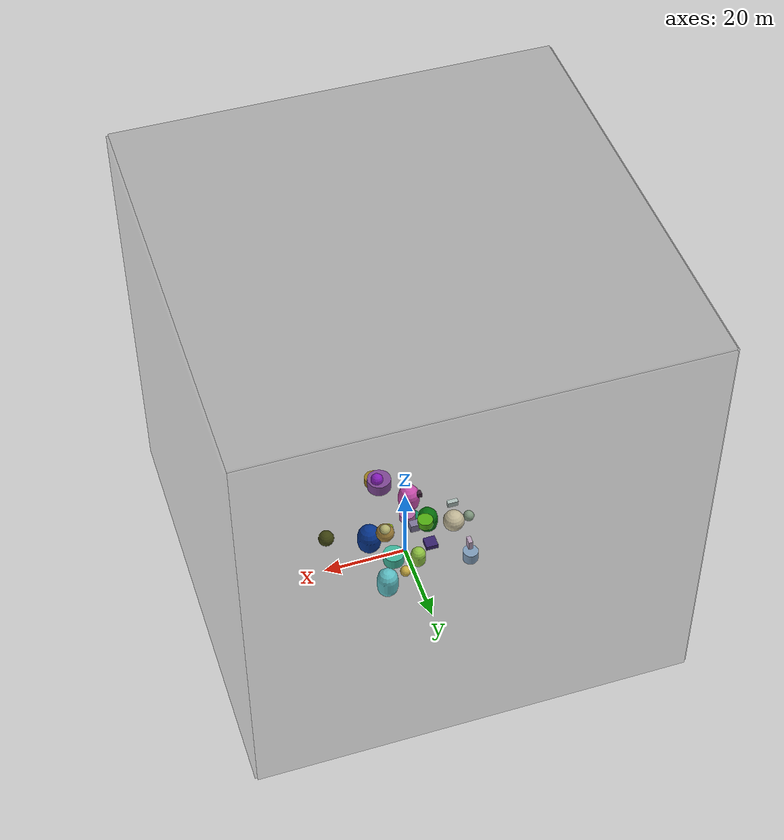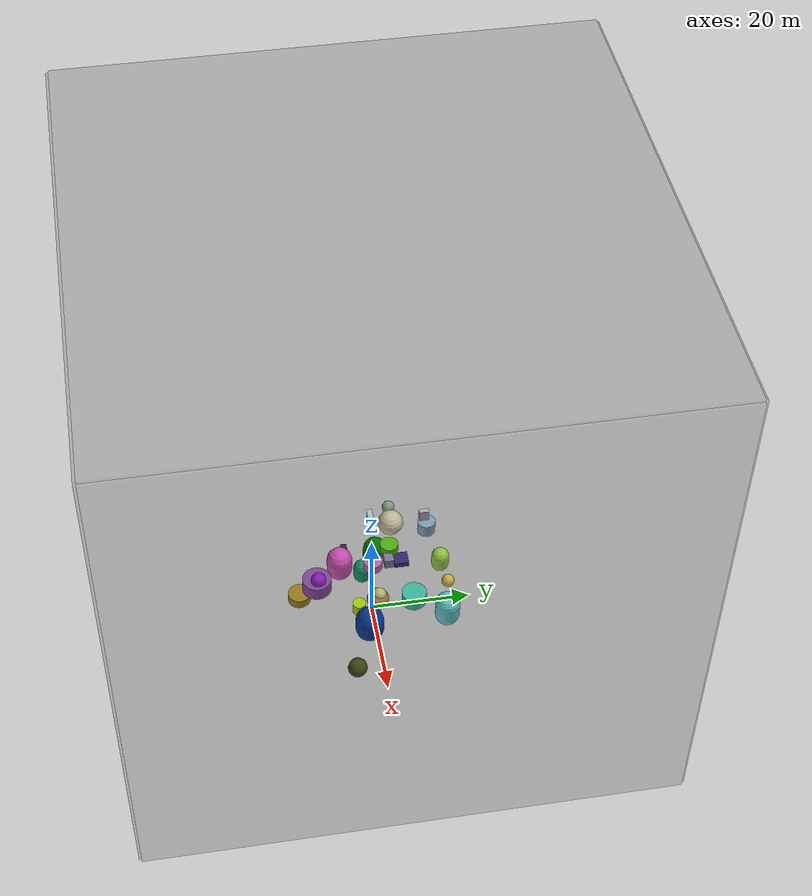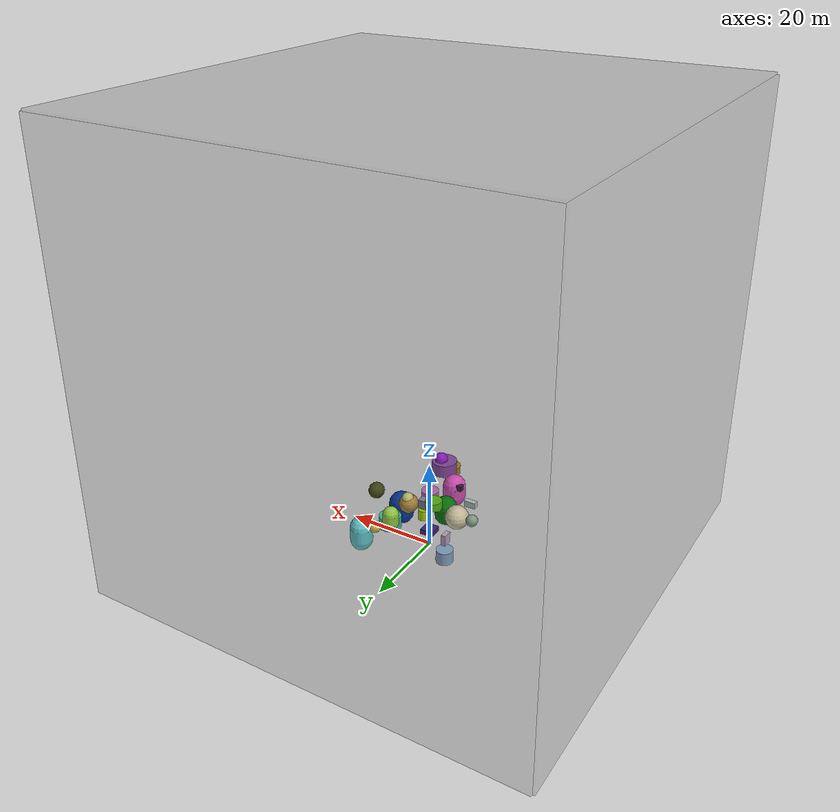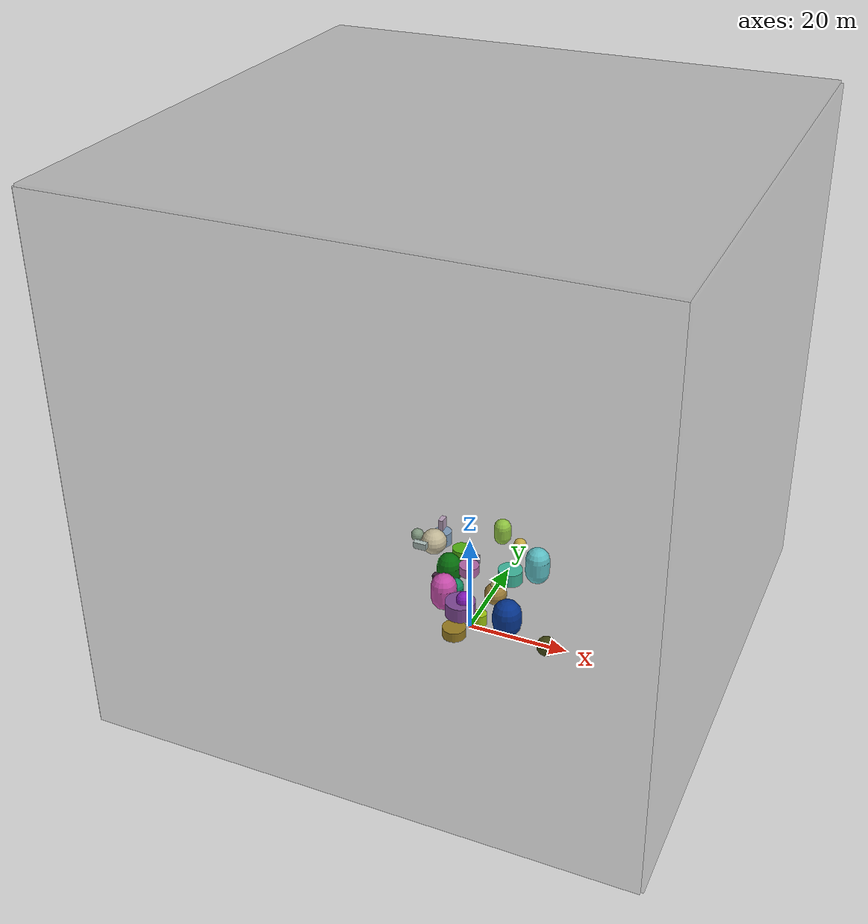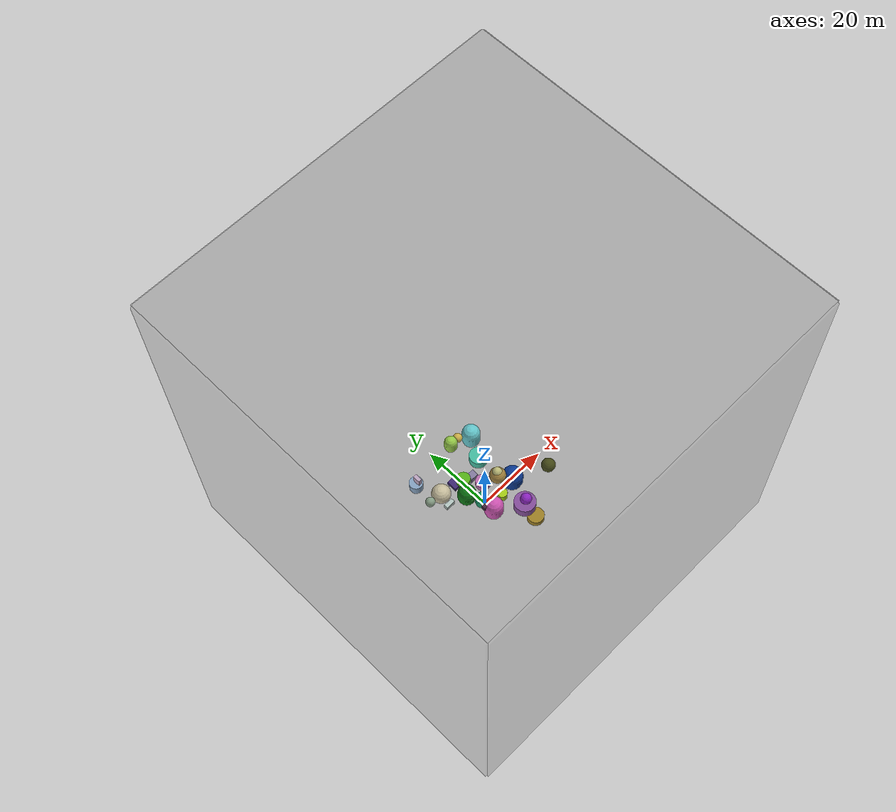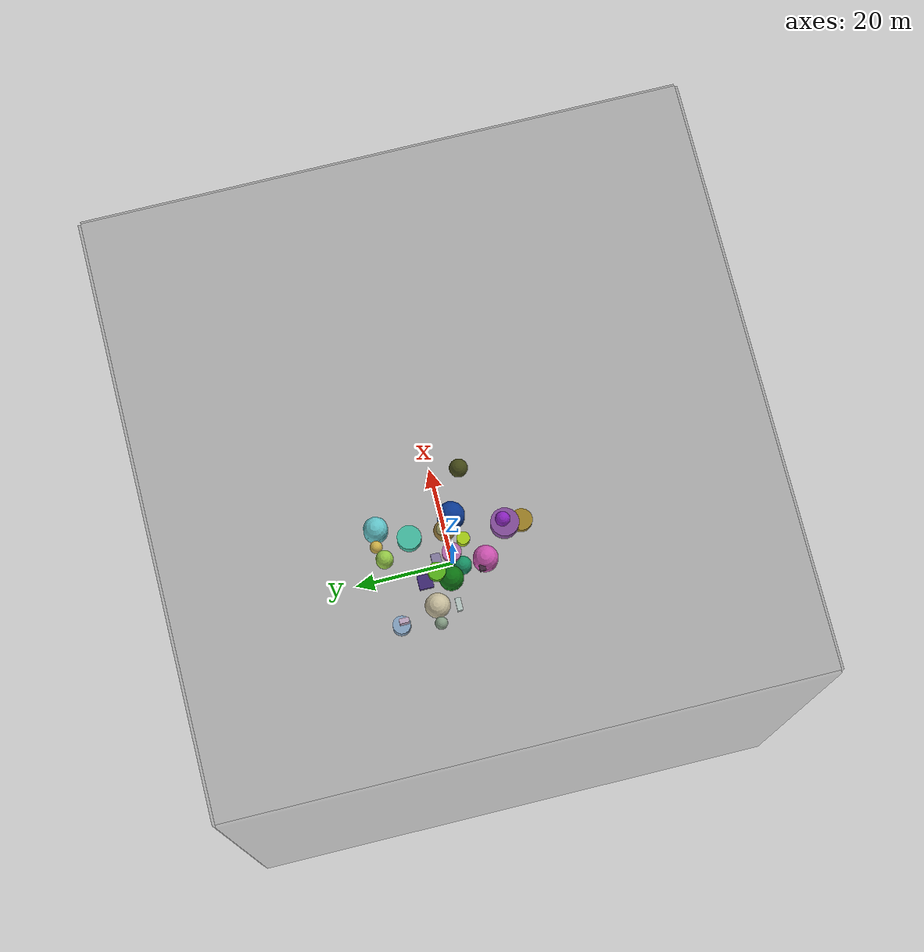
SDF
<sdf version='1.11'>
  <world name='world_0'>
    <gravity>0 0 -9.8066499999999994</gravity>
    <magnetic_field>5.5644999999999998e-06 2.2875799999999999e-05 -4.2388400000000002e-05</magnetic_field>
    <wind>
      <linear_velocity>8 2 10</linear_velocity>
    </wind>
    <physics default='false' type='ode'>
      <max_step_size>0.001</max_step_size>
      <real_time_factor>1</real_time_factor>
      <max_contacts>20</max_contacts>
    </physics>
    <model name='model_0'>
      <static>false</static>
      <self_collide>true</self_collide>
      <allow_auto_disable>true</allow_auto_disable>
      <enable_wind>true</enable_wind>
      <pose>-5.8562967054705739 5.292022592746676 4.3471294084064125 0 0 0</pose>
      <link name='link_0'>
        <pose>7.1224417815877104 8.154955835802177 9.7172102735100978 0 0 0</pose>
        <inertial>
          <pose>0 0 0 0 0 0</pose>
          <mass>1</mass>
          <inertia>
            <ixx>1</ixx>
            <ixy>0</ixy>
            <ixz>0</ixz>
            <iyy>1</iyy>
            <iyz>0</iyz>
            <izz>1</izz>
          </inertia>
        </inertial>
        <enable_wind>false</enable_wind>
        <collision name='collision_0'>
          <pose>0 0 0 0 0 0</pose>
          <geometry>
            <capsule>
              <radius>1.7191710811362637</radius>
              <length>1.9647214509957649</length>
            </capsule>
          </geometry>
          <surface>
            <contact>
              <collide_bitmask>255</collide_bitmask>
            </contact>
            <friction>
              <ode>
                <mu>1</mu>
                <mu2>1</mu2>
                <slip1>0</slip1>
                <slip2>0</slip2>
                <fdir1>0 0 0</fdir1>
              </ode>
            </friction>
          </surface>
        </collision>
        <visual name='visual_0'>
          <pose>0 0 0 0 0 0</pose>
          <geometry>
            <capsule>
              <radius>1.7191710811362637</radius>
              <length>1.9647214509957649</length>
            </capsule>
          </geometry>
          <cast_shadows>true</cast_shadows>
          <laser_retro>0</laser_retro>
          <transparency>0</transparency>
          <visibility_flags>4294967295</visibility_flags>
          <material>
            <ambient>0.684615672 0.938474774 0.30242455 1</ambient>
            <diffuse>0.684615672 0.938474774 0.30242455 1</diffuse>
            <specular>0 0 0 1</specular>
            <emissive>0 0 0 1</emissive>
            <render_order>0</render_order>
            <lighting>true</lighting>
            <double_sided>false</double_sided>
            <shader type='pixel'/>
          </material>
        </visual>
      </link>
      <link name='link_1'>
        <pose>-4.1815415692174724 0.21586167555117619 9.381170673889752 0 0 0</pose>
        <inertial>
          <pose>0 0 0 0 0 0</pose>
          <mass>1</mass>
          <inertia>
            <ixx>1</ixx>
            <ixy>0</ixy>
            <ixz>0</ixz>
            <iyy>1</iyy>
            <iyz>0</iyz>
            <izz>1</izz>
          </inertia>
        </inertial>
        <enable_wind>false</enable_wind>
        <collision name='collision_1'>
          <pose>0 0 0 0 0 0</pose>
          <geometry>
            <sphere>
              <radius>2.5320652994123889</radius>
            </sphere>
          </geometry>
          <surface>
            <contact>
              <collide_bitmask>255</collide_bitmask>
            </contact>
            <friction>
              <ode>
                <mu>1</mu>
                <mu2>1</mu2>
                <slip1>0</slip1>
                <slip2>0</slip2>
                <fdir1>0 0 0</fdir1>
              </ode>
            </friction>
          </surface>
        </collision>
        <visual name='visual_1'>
          <pose>0 0 0 0 0 0</pose>
          <geometry>
            <sphere>
              <radius>2.5320652994123889</radius>
            </sphere>
          </geometry>
          <cast_shadows>true</cast_shadows>
          <laser_retro>0</laser_retro>
          <transparency>0</transparency>
          <visibility_flags>4294967295</visibility_flags>
          <material>
            <ambient>0.937060773 0.886763275 0.728754282 1</ambient>
            <diffuse>0.937060773 0.886763275 0.728754282 1</diffuse>
            <specular>0 0 0 1</specular>
            <emissive>0 0 0 1</emissive>
            <render_order>0</render_order>
            <lighting>true</lighting>
            <double_sided>false</double_sided>
            <shader type='pixel'/>
          </material>
        </visual>
      </link>
      <link name='link_2'>
        <pose>-5.5881973507365839 7.2727985034648448 8.8428962565730025 0 0 0</pose>
        <inertial>
          <pose>0 0 0 0 0 0</pose>
          <mass>1</mass>
          <inertia>
            <ixx>1</ixx>
            <ixy>0</ixy>
            <ixz>0</ixz>
            <iyy>1</iyy>
            <iyz>0</iyz>
            <izz>1</izz>
          </inertia>
        </inertial>
        <enable_wind>false</enable_wind>
        <collision name='collision_2'>
          <pose>0 0 0 0 0 0</pose>
          <geometry>
            <box>
              <size>1.00797735520722 1.9620247322256035 2.3943640683259142</size>
            </box>
          </geometry>
          <surface>
            <contact>
              <collide_bitmask>255</collide_bitmask>
            </contact>
            <friction>
              <ode>
                <mu>1</mu>
                <mu2>1</mu2>
                <slip1>0</slip1>
                <slip2>0</slip2>
                <fdir1>0 0 0</fdir1>
              </ode>
            </friction>
          </surface>
        </collision>
        <visual name='visual_2'>
          <pose>0 0 0 0 0 0</pose>
          <geometry>
            <box>
              <size>1.00797735520722 1.9620247322256035 2.3943640683259142</size>
            </box>
          </geometry>
          <cast_shadows>true</cast_shadows>
          <laser_retro>0</laser_retro>
          <transparency>0</transparency>
          <visibility_flags>4294967295</visibility_flags>
          <material>
            <ambient>0.87322402 0.759853244 0.889345109 1</ambient>
            <diffuse>0.87322402 0.759853244 0.889345109 1</diffuse>
            <specular>0 0 0 1</specular>
            <emissive>0 0 0 1</emissive>
            <render_order>0</render_order>
            <lighting>true</lighting>
            <double_sided>false</double_sided>
            <shader type='pixel'/>
          </material>
        </visual>
      </link>
      <link name='link_3'>
        <pose>1.8243479950754455 1.2841866620108195 4.5973993271504359 0 0 0</pose>
        <inertial>
          <pose>0 0 0 0 0 0</pose>
          <mass>1</mass>
          <inertia>
            <ixx>1</ixx>
            <ixy>0</ixy>
            <ixz>0</ixz>
            <iyy>1</iyy>
            <iyz>0</iyz>
            <izz>1</izz>
          </inertia>
        </inertial>
        <enable_wind>false</enable_wind>
        <collision name='collision_3'>
          <pose>0 0 0 0 0 0</pose>
          <geometry>
            <box>
              <size>2.8599349705737289 2.9120623491236062 1.1342738496489437</size>
            </box>
          </geometry>
          <surface>
            <contact>
              <collide_bitmask>255</collide_bitmask>
            </contact>
            <friction>
              <ode>
                <mu>1</mu>
                <mu2>1</mu2>
                <slip1>0</slip1>
                <slip2>0</slip2>
                <fdir1>0 0 0</fdir1>
              </ode>
            </friction>
          </surface>
        </collision>
        <visual name='visual_3'>
          <pose>0 0 0 0 0 0</pose>
          <geometry>
            <box>
              <size>2.8599349705737289 2.9120623491236062 1.1342738496489437</size>
            </box>
          </geometry>
          <cast_shadows>true</cast_shadows>
          <laser_retro>0</laser_retro>
          <transparency>0</transparency>
          <visibility_flags>4294967295</visibility_flags>
          <material>
            <ambient>0.260255694 0.15791811 0.516666472 1</ambient>
            <diffuse>0.260255694 0.15791811 0.516666472 1</diffuse>
            <specular>0 0 0 1</specular>
            <emissive>0 0 0 1</emissive>
            <render_order>0</render_order>
            <lighting>true</lighting>
            <double_sided>false</double_sided>
            <shader type='pixel'/>
          </material>
        </visual>
      </link>
      <link name='link_4'>
        <pose>-7.8247906690463083 0.34545215775601257 9.8876968806735146 0 0 0</pose>
        <inertial>
          <pose>0 0 0 0 0 0</pose>
          <mass>1</mass>
          <inertia>
            <ixx>1</ixx>
            <ixy>0</ixy>
            <ixz>0</ixz>
            <iyy>1</iyy>
            <iyz>0</iyz>
            <izz>1</izz>
          </inertia>
        </inertial>
        <enable_wind>false</enable_wind>
        <collision name='collision_4'>
          <pose>0 0 0 0 0 0</pose>
          <geometry>
            <sphere>
              <radius>1.2736164415648408</radius>
            </sphere>
          </geometry>
          <surface>
            <contact>
              <collide_bitmask>255</collide_bitmask>
            </contact>
            <friction>
              <ode>
                <mu>1</mu>
                <mu2>1</mu2>
                <slip1>0</slip1>
                <slip2>0</slip2>
                <fdir1>0 0 0</fdir1>
              </ode>
            </friction>
          </surface>
        </collision>
        <visual name='visual_4'>
          <pose>0 0 0 0 0 0</pose>
          <geometry>
            <sphere>
              <radius>1.2736164415648408</radius>
            </sphere>
          </geometry>
          <cast_shadows>true</cast_shadows>
          <laser_retro>0</laser_retro>
          <transparency>0</transparency>
          <visibility_flags>4294967295</visibility_flags>
          <material>
            <ambient>0.608035505 0.721620917 0.602896094 1</ambient>
            <diffuse>0.608035505 0.721620917 0.602896094 1</diffuse>
            <specular>0 0 0 1</specular>
            <emissive>0 0 0 1</emissive>
            <render_order>0</render_order>
            <lighting>true</lighting>
            <double_sided>false</double_sided>
            <shader type='pixel'/>
          </material>
        </visual>
      </link>
      <plugin name='gz::sim::systems::PythonSystemLoader' filename='gz-sim-python-system-loader-system'>
        <module_name>driver</module_name>
        <force>100000</force>
      </plugin>
    </model>
    <model name='model_1'>
      <static>true</static>
      <self_collide>false</self_collide>
      <allow_auto_disable>true</allow_auto_disable>
      <enable_wind>true</enable_wind>
      <pose>-1.8862450775439594 -5.3847762411111777 6.0206876133095664 0 0 0</pose>
      <link name='link_5'>
        <pose>-2.97969666029325 0.56546840969576806 7.5127174568264312 0 0 0</pose>
        <inertial>
          <pose>0 0 0 0 0 0</pose>
          <mass>1</mass>
          <inertia>
            <ixx>1</ixx>
            <ixy>0</ixy>
            <ixz>0</ixz>
            <iyy>1</iyy>
            <iyz>0</iyz>
            <izz>1</izz>
          </inertia>
        </inertial>
        <enable_wind>false</enable_wind>
        <collision name='collision_5'>
          <pose>0 0 0 0 0 0</pose>
          <geometry>
            <box>
              <size>1.2479056680528784 1.2256149158481857 1.2719206645956487</size>
            </box>
          </geometry>
          <surface>
            <contact>
              <collide_bitmask>255</collide_bitmask>
            </contact>
            <friction>
              <ode>
                <mu>1</mu>
                <mu2>1</mu2>
                <slip1>0</slip1>
                <slip2>0</slip2>
                <fdir1>0 0 0</fdir1>
              </ode>
            </friction>
          </surface>
        </collision>
        <visual name='visual_5'>
          <pose>0 0 0 0 0 0</pose>
          <geometry>
            <box>
              <size>1.2479056680528784 1.2256149158481857 1.2719206645956487</size>
            </box>
          </geometry>
          <cast_shadows>true</cast_shadows>
          <laser_retro>0</laser_retro>
          <transparency>0</transparency>
          <visibility_flags>4294967295</visibility_flags>
          <material>
            <ambient>0.271330744 0.146540076 0.248400375 1</ambient>
            <diffuse>0.271330744 0.146540076 0.248400375 1</diffuse>
            <specular>0 0 0 1</specular>
            <emissive>0 0 0 1</emissive>
            <render_order>0</render_order>
            <lighting>true</lighting>
            <double_sided>false</double_sided>
            <shader type='pixel'/>
          </material>
        </visual>
      </link>
      <link name='link_6'>
        <pose>-3.082569859743165 6.8583092051319845 5.3150976872215336 0 0 0</pose>
        <inertial>
          <pose>0 0 0 0 0 0</pose>
          <mass>1</mass>
          <inertia>
            <ixx>1</ixx>
            <ixy>0</ixy>
            <ixz>0</ixz>
            <iyy>1</iyy>
            <iyz>0</iyz>
            <izz>1</izz>
          </inertia>
        </inertial>
        <enable_wind>false</enable_wind>
        <collision name='collision_6'>
          <pose>0 0 0 0 0 0</pose>
          <geometry>
            <capsule>
              <radius>2.4046990567467708</radius>
              <length>1.7624456142561238</length>
            </capsule>
          </geometry>
          <surface>
            <contact>
              <collide_bitmask>255</collide_bitmask>
            </contact>
            <friction>
              <ode>
                <mu>1</mu>
                <mu2>1</mu2>
                <slip1>0</slip1>
                <slip2>0</slip2>
                <fdir1>0 0 0</fdir1>
              </ode>
            </friction>
          </surface>
        </collision>
        <visual name='visual_6'>
          <pose>0 0 0 0 0 0</pose>
          <geometry>
            <capsule>
              <radius>2.4046990567467708</radius>
              <length>1.7624456142561238</length>
            </capsule>
          </geometry>
          <cast_shadows>true</cast_shadows>
          <laser_retro>0</laser_retro>
          <transparency>0</transparency>
          <visibility_flags>4294967295</visibility_flags>
          <material>
            <ambient>0.0184727386 0.526912093 0.0491232313 1</ambient>
            <diffuse>0.0184727386 0.526912093 0.0491232313 1</diffuse>
            <specular>0 0 0 1</specular>
            <emissive>0 0 0 1</emissive>
            <render_order>0</render_order>
            <lighting>true</lighting>
            <double_sided>false</double_sided>
            <shader type='pixel'/>
          </material>
        </visual>
      </link>
      <link name='link_7'>
        <pose>7.0177555607983031 5.8299309131769981 3.0202133786108911 0 0 0</pose>
        <inertial>
          <pose>0 0 0 0 0 0</pose>
          <mass>1</mass>
          <inertia>
            <ixx>1</ixx>
            <ixy>0</ixy>
            <ixz>0</ixz>
            <iyy>1</iyy>
            <iyz>0</iyz>
            <izz>1</izz>
          </inertia>
        </inertial>
        <enable_wind>false</enable_wind>
        <collision name='collision_7'>
          <pose>0 0 0 0 0 0</pose>
          <geometry>
            <sphere>
              <radius>2.1853484696182437</radius>
            </sphere>
          </geometry>
          <surface>
            <contact>
              <collide_bitmask>255</collide_bitmask>
            </contact>
            <friction>
              <ode>
                <mu>1</mu>
                <mu2>1</mu2>
                <slip1>0</slip1>
                <slip2>0</slip2>
                <fdir1>0 0 0</fdir1>
              </ode>
            </friction>
          </surface>
        </collision>
        <visual name='visual_7'>
          <pose>0 0 0 0 0 0</pose>
          <geometry>
            <sphere>
              <radius>2.1853484696182437</radius>
            </sphere>
          </geometry>
          <cast_shadows>true</cast_shadows>
          <laser_retro>0</laser_retro>
          <transparency>0</transparency>
          <visibility_flags>4294967295</visibility_flags>
          <material>
            <ambient>0.759367228 0.603504539 0.264703333 1</ambient>
            <diffuse>0.759367228 0.603504539 0.264703333 1</diffuse>
            <specular>0 0 0 1</specular>
            <emissive>0 0 0 1</emissive>
            <render_order>0</render_order>
            <lighting>true</lighting>
            <double_sided>false</double_sided>
            <shader type='pixel'/>
          </material>
        </visual>
      </link>
      <link name='link_8'>
        <pose>5.0854234050449048 -9.4121354568521891 4.5292534215454729 0 0 0</pose>
        <inertial>
          <pose>0 0 0 0 0 0</pose>
          <mass>1</mass>
          <inertia>
            <ixx>1</ixx>
            <ixy>0</ixy>
            <ixz>0</ixz>
            <iyy>1</iyy>
            <iyz>0</iyz>
            <izz>1</izz>
          </inertia>
        </inertial>
        <enable_wind>false</enable_wind>
        <collision name='collision_8'>
          <pose>0 0 0 0 0 0</pose>
          <geometry>
            <cylinder>
              <radius>2.1948455406820009</radius>
              <length>1.9033515005008972</length>
            </cylinder>
          </geometry>
          <surface>
            <contact>
              <collide_bitmask>255</collide_bitmask>
            </contact>
            <friction>
              <ode>
                <mu>1</mu>
                <mu2>1</mu2>
                <slip1>0</slip1>
                <slip2>0</slip2>
                <fdir1>0 0 0</fdir1>
              </ode>
            </friction>
          </surface>
        </collision>
        <visual name='visual_8'>
          <pose>0 0 0 0 0 0</pose>
          <geometry>
            <cylinder>
              <radius>2.1948455406820009</radius>
              <length>1.9033515005008972</length>
            </cylinder>
          </geometry>
          <cast_shadows>true</cast_shadows>
          <laser_retro>0</laser_retro>
          <transparency>0</transparency>
          <visibility_flags>4294967295</visibility_flags>
          <material>
            <ambient>0.719311476 0.579470336 0.138637707 1</ambient>
            <diffuse>0.719311476 0.579470336 0.138637707 1</diffuse>
            <specular>0 0 0 1</specular>
            <emissive>0 0 0 1</emissive>
            <render_order>0</render_order>
            <lighting>true</lighting>
            <double_sided>false</double_sided>
            <shader type='pixel'/>
          </material>
        </visual>
      </link>
      <link name='link_9'>
        <pose>-0.92838971571557849 -0.58518895506809265 5.5844607668886495 0 0 0</pose>
        <inertial>
          <pose>0 0 0 0 0 0</pose>
          <mass>1</mass>
          <inertia>
            <ixx>1</ixx>
            <ixy>0</ixy>
            <ixz>0</ixz>
            <iyy>1</iyy>
            <iyz>0</iyz>
            <izz>1</izz>
          </inertia>
        </inertial>
        <enable_wind>false</enable_wind>
        <collision name='collision_9'>
          <pose>0 0 0 0 0 0</pose>
          <geometry>
            <capsule>
              <radius>2.5068992578958147</radius>
              <length>2.3922379451980067</length>
            </capsule>
          </geometry>
          <surface>
            <contact>
              <collide_bitmask>255</collide_bitmask>
            </contact>
            <friction>
              <ode>
                <mu>1</mu>
                <mu2>1</mu2>
                <slip1>0</slip1>
                <slip2>0</slip2>
                <fdir1>0 0 0</fdir1>
              </ode>
            </friction>
          </surface>
        </collision>
        <visual name='visual_9'>
          <pose>0 0 0 0 0 0</pose>
          <geometry>
            <capsule>
              <radius>2.5068992578958147</radius>
              <length>2.3922379451980067</length>
            </capsule>
          </geometry>
          <cast_shadows>true</cast_shadows>
          <laser_retro>0</laser_retro>
          <transparency>0</transparency>
          <visibility_flags>4294967295</visibility_flags>
          <material>
            <ambient>0.960728645 0.362132847 0.822767794 1</ambient>
            <diffuse>0.960728645 0.362132847 0.822767794 1</diffuse>
            <specular>0 0 0 1</specular>
            <emissive>0 0 0 1</emissive>
            <render_order>0</render_order>
            <lighting>true</lighting>
            <double_sided>false</double_sided>
            <shader type='pixel'/>
          </material>
        </visual>
      </link>
      <plugin name='gz::sim::systems::PythonSystemLoader' filename='gz-sim-python-system-loader-system'>
        <module_name>driver</module_name>
        <force>100000</force>
      </plugin>
    </model>
    <model name='model_2'>
      <static>true</static>
      <self_collide>true</self_collide>
      <allow_auto_disable>true</allow_auto_disable>
      <enable_wind>false</enable_wind>
      <pose>9.8522898092701681 7.0065126335812487 1.4800835018157998 0 0 0</pose>
      <link name='link_10'>
        <pose>-1.4557399889234794 -8.6855555438267835 4.1838762590652498 0 0 0</pose>
        <inertial>
          <pose>0 0 0 0 0 0</pose>
          <mass>1</mass>
          <inertia>
            <ixx>1</ixx>
            <ixy>0</ixy>
            <ixz>0</ixz>
            <iyy>1</iyy>
            <iyz>0</iyz>
            <izz>1</izz>
          </inertia>
        </inertial>
        <enable_wind>false</enable_wind>
        <collision name='collision_10'>
          <pose>0 0 0 0 0 0</pose>
          <geometry>
            <capsule>
              <radius>2.8173041198936408</radius>
              <length>2.0749010729578439</length>
            </capsule>
          </geometry>
          <surface>
            <contact>
              <collide_bitmask>255</collide_bitmask>
            </contact>
            <friction>
              <ode>
                <mu>1</mu>
                <mu2>1</mu2>
                <slip1>0</slip1>
                <slip2>0</slip2>
                <fdir1>0 0 0</fdir1>
              </ode>
            </friction>
          </surface>
        </collision>
        <visual name='visual_10'>
          <pose>0 0 0 0 0 0</pose>
          <geometry>
            <capsule>
              <radius>2.8173041198936408</radius>
              <length>2.0749010729578439</length>
            </capsule>
          </geometry>
          <cast_shadows>true</cast_shadows>
          <laser_retro>0</laser_retro>
          <transparency>0</transparency>
          <visibility_flags>4294967295</visibility_flags>
          <material>
            <ambient>0.0121176876 0.241746217 0.679670095 1</ambient>
            <diffuse>0.0121176876 0.241746217 0.679670095 1</diffuse>
            <specular>0 0 0 1</specular>
            <emissive>0 0 0 1</emissive>
            <render_order>0</render_order>
            <lighting>true</lighting>
            <double_sided>false</double_sided>
            <shader type='pixel'/>
          </material>
        </visual>
      </link>
      <link name='link_11'>
        <pose>-4.6452457631731159 -6.2845845161907876 8.9449698896279841 0 0 0</pose>
        <inertial>
          <pose>0 0 0 0 0 0</pose>
          <mass>1</mass>
          <inertia>
            <ixx>1</ixx>
            <ixy>0</ixy>
            <ixz>0</ixz>
            <iyy>1</iyy>
            <iyz>0</iyz>
            <izz>1</izz>
          </inertia>
        </inertial>
        <enable_wind>false</enable_wind>
        <collision name='collision_11'>
          <pose>0 0 0 0 0 0</pose>
          <geometry>
            <sphere>
              <radius>1.3522830965798498</radius>
            </sphere>
          </geometry>
          <surface>
            <contact>
              <collide_bitmask>255</collide_bitmask>
            </contact>
            <friction>
              <ode>
                <mu>1</mu>
                <mu2>1</mu2>
                <slip1>0</slip1>
                <slip2>0</slip2>
                <fdir1>0 0 0</fdir1>
              </ode>
            </friction>
          </surface>
        </collision>
        <visual name='visual_11'>
          <pose>0 0 0 0 0 0</pose>
          <geometry>
            <sphere>
              <radius>1.3522830965798498</radius>
            </sphere>
          </geometry>
          <cast_shadows>true</cast_shadows>
          <laser_retro>0</laser_retro>
          <transparency>0</transparency>
          <visibility_flags>4294967295</visibility_flags>
          <material>
            <ambient>0.869817376 0.857367694 0.535221696 1</ambient>
            <diffuse>0.869817376 0.857367694 0.535221696 1</diffuse>
            <specular>0 0 0 1</specular>
            <emissive>0 0 0 1</emissive>
            <render_order>0</render_order>
            <lighting>true</lighting>
            <double_sided>false</double_sided>
            <shader type='pixel'/>
          </material>
        </visual>
      </link>
      <link name='link_12'>
        <pose>-1.1370324133317062 6.6696976736530686 6.3431706830996868 0 0 0</pose>
        <inertial>
          <pose>0 0 0 0 0 0</pose>
          <mass>1</mass>
          <inertia>
            <ixx>1</ixx>
            <ixy>0</ixy>
            <ixz>0</ixz>
            <iyy>1</iyy>
            <iyz>0</iyz>
            <izz>1</izz>
          </inertia>
        </inertial>
        <enable_wind>false</enable_wind>
        <collision name='collision_12'>
          <pose>0 0 0 0 0 0</pose>
          <geometry>
            <capsule>
              <radius>2.4423600075068839</radius>
              <length>2.920787827121639</length>
            </capsule>
          </geometry>
          <surface>
            <contact>
              <collide_bitmask>255</collide_bitmask>
            </contact>
            <friction>
              <ode>
                <mu>1</mu>
                <mu2>1</mu2>
                <slip1>0</slip1>
                <slip2>0</slip2>
                <fdir1>0 0 0</fdir1>
              </ode>
            </friction>
          </surface>
        </collision>
        <visual name='visual_12'>
          <pose>0 0 0 0 0 0</pose>
          <geometry>
            <capsule>
              <radius>2.4423600075068839</radius>
              <length>2.920787827121639</length>
            </capsule>
          </geometry>
          <cast_shadows>true</cast_shadows>
          <laser_retro>0</laser_retro>
          <transparency>0</transparency>
          <visibility_flags>4294967295</visibility_flags>
          <material>
            <ambient>0.44089523 0.922009468 0.949760139 1</ambient>
            <diffuse>0.44089523 0.922009468 0.949760139 1</diffuse>
            <specular>0 0 0 1</specular>
            <emissive>0 0 0 1</emissive>
            <render_order>0</render_order>
            <lighting>true</lighting>
            <double_sided>false</double_sided>
            <shader type='pixel'/>
          </material>
        </visual>
      </link>
      <link name='link_13'>
        <pose>-5.2090479992563772 7.438660319934403 9.8279250006705592 0 0 0</pose>
        <inertial>
          <pose>0 0 0 0 0 0</pose>
          <mass>1</mass>
          <inertia>
            <ixx>1</ixx>
            <ixy>0</ixy>
            <ixz>0</ixz>
            <iyy>1</iyy>
            <iyz>0</iyz>
            <izz>1</izz>
          </inertia>
        </inertial>
        <enable_wind>false</enable_wind>
        <collision name='collision_13'>
          <pose>0 0 0 0 0 0</pose>
          <geometry>
            <sphere>
              <radius>1.2632066711619558</radius>
            </sphere>
          </geometry>
          <surface>
            <contact>
              <collide_bitmask>255</collide_bitmask>
            </contact>
            <friction>
              <ode>
                <mu>1</mu>
                <mu2>1</mu2>
                <slip1>0</slip1>
                <slip2>0</slip2>
                <fdir1>0 0 0</fdir1>
              </ode>
            </friction>
          </surface>
        </collision>
        <visual name='visual_13'>
          <pose>0 0 0 0 0 0</pose>
          <geometry>
            <sphere>
              <radius>1.2632066711619558</radius>
            </sphere>
          </geometry>
          <cast_shadows>true</cast_shadows>
          <laser_retro>0</laser_retro>
          <transparency>0</transparency>
          <visibility_flags>4294967295</visibility_flags>
          <material>
            <ambient>0.964358091 0.819470227 0.306800723 1</ambient>
            <diffuse>0.964358091 0.819470227 0.306800723 1</diffuse>
            <specular>0 0 0 1</specular>
            <emissive>0 0 0 1</emissive>
            <render_order>0</render_order>
            <lighting>true</lighting>
            <double_sided>false</double_sided>
            <shader type='pixel'/>
          </material>
        </visual>
      </link>
      <link name='link_14'>
        <pose>-4.5295431563758903 0.60423063090716944 7.1490529501341538 0 0 0</pose>
        <inertial>
          <pose>0 0 0 0 0 0</pose>
          <mass>1</mass>
          <inertia>
            <ixx>1</ixx>
            <ixy>0</ixy>
            <ixz>0</ixz>
            <iyy>1</iyy>
            <iyz>0</iyz>
            <izz>1</izz>
          </inertia>
        </inertial>
        <enable_wind>false</enable_wind>
        <collision name='collision_14'>
          <pose>0 0 0 0 0 0</pose>
          <geometry>
            <cylinder>
              <radius>2.4432821692973548</radius>
              <length>2.6803364261640192</length>
            </cylinder>
          </geometry>
          <surface>
            <contact>
              <collide_bitmask>255</collide_bitmask>
            </contact>
            <friction>
              <ode>
                <mu>1</mu>
                <mu2>1</mu2>
                <slip1>0</slip1>
                <slip2>0</slip2>
                <fdir1>0 0 0</fdir1>
              </ode>
            </friction>
          </surface>
        </collision>
        <visual name='visual_14'>
          <pose>0 0 0 0 0 0</pose>
          <geometry>
            <cylinder>
              <radius>2.4432821692973548</radius>
              <length>2.6803364261640192</length>
            </cylinder>
          </geometry>
          <cast_shadows>true</cast_shadows>
          <laser_retro>0</laser_retro>
          <transparency>0</transparency>
          <visibility_flags>4294967295</visibility_flags>
          <material>
            <ambient>0.28724131 0.866822481 0.73763448 1</ambient>
            <diffuse>0.28724131 0.866822481 0.73763448 1</diffuse>
            <specular>0 0 0 1</specular>
            <emissive>0 0 0 1</emissive>
            <render_order>0</render_order>
            <lighting>true</lighting>
            <double_sided>false</double_sided>
            <shader type='pixel'/>
          </material>
        </visual>
      </link>
      <plugin name='gz::sim::systems::PythonSystemLoader' filename='gz-sim-python-system-loader-system'>
        <module_name>driver</module_name>
        <force>100000</force>
      </plugin>
    </model>
    <model name='model_3'>
      <static>false</static>
      <self_collide>true</self_collide>
      <allow_auto_disable>true</allow_auto_disable>
      <enable_wind>false</enable_wind>
      <pose>8.331063286184559 -3.1925665741468485 4.749577056456566 0 0 0</pose>
      <link name='link_15'>
        <pose>-4.8493567392482522 -7.7673019460628527 8.8723080549174185 0 0 0</pose>
        <inertial>
          <pose>0 0 0 0 0 0</pose>
          <mass>1</mass>
          <inertia>
            <ixx>1</ixx>
            <ixy>0</ixy>
            <ixz>0</ixz>
            <iyy>1</iyy>
            <iyz>0</iyz>
            <izz>1</izz>
          </inertia>
        </inertial>
        <enable_wind>false</enable_wind>
        <collision name='collision_15'>
          <pose>0 0 0 0 0 0</pose>
          <geometry>
            <capsule>
              <radius>1.4794716414133451</radius>
              <length>2.8893566815984428</length>
            </capsule>
          </geometry>
          <surface>
            <contact>
              <collide_bitmask>255</collide_bitmask>
            </contact>
            <friction>
              <ode>
                <mu>1</mu>
                <mu2>1</mu2>
                <slip1>0</slip1>
                <slip2>0</slip2>
                <fdir1>0 0 0</fdir1>
              </ode>
            </friction>
          </surface>
        </collision>
        <visual name='visual_15'>
          <pose>0 0 0 0 0 0</pose>
          <geometry>
            <capsule>
              <radius>1.4794716414133451</radius>
              <length>2.8893566815984428</length>
            </capsule>
          </geometry>
          <cast_shadows>true</cast_shadows>
          <laser_retro>0</laser_retro>
          <transparency>0</transparency>
          <visibility_flags>4294967295</visibility_flags>
          <material>
            <ambient>0.640705168 0.12995328 0.895779848 1</ambient>
            <diffuse>0.640705168 0.12995328 0.895779848 1</diffuse>
            <specular>0 0 0 1</specular>
            <emissive>0 0 0 1</emissive>
            <render_order>0</render_order>
            <lighting>true</lighting>
            <double_sided>false</double_sided>
            <shader type='pixel'/>
          </material>
        </visual>
      </link>
      <link name='link_16'>
        <pose>-5.4698699300786409 -8.0533825400820991 8.5276883640900252 0 0 0</pose>
        <inertial>
          <pose>0 0 0 0 0 0</pose>
          <mass>1</mass>
          <inertia>
            <ixx>1</ixx>
            <ixy>0</ixy>
            <ixz>0</ixz>
            <iyy>1</iyy>
            <iyz>0</iyz>
            <izz>1</izz>
          </inertia>
        </inertial>
        <enable_wind>false</enable_wind>
        <collision name='collision_16'>
          <pose>0 0 0 0 0 0</pose>
          <geometry>
            <cylinder>
              <radius>2.8425424554381804</radius>
              <length>2.8970865799507033</length>
            </cylinder>
          </geometry>
          <surface>
            <contact>
              <collide_bitmask>255</collide_bitmask>
            </contact>
            <friction>
              <ode>
                <mu>1</mu>
                <mu2>1</mu2>
                <slip1>0</slip1>
                <slip2>0</slip2>
                <fdir1>0 0 0</fdir1>
              </ode>
            </friction>
          </surface>
        </collision>
        <visual name='visual_16'>
          <pose>0 0 0 0 0 0</pose>
          <geometry>
            <cylinder>
              <radius>2.8425424554381804</radius>
              <length>2.8970865799507033</length>
            </cylinder>
          </geometry>
          <cast_shadows>true</cast_shadows>
          <laser_retro>0</laser_retro>
          <transparency>0</transparency>
          <visibility_flags>4294967295</visibility_flags>
          <material>
            <ambient>0.601542473 0.333219439 0.70867753 1</ambient>
            <diffuse>0.601542473 0.333219439 0.70867753 1</diffuse>
            <specular>0 0 0 1</specular>
            <emissive>0 0 0 1</emissive>
            <render_order>0</render_order>
            <lighting>true</lighting>
            <double_sided>false</double_sided>
            <shader type='pixel'/>
          </material>
        </visual>
      </link>
      <link name='link_17'>
        <pose>9.5237401467703613 -2.3984401867721461 0.076570179848385322 0 0 0</pose>
        <inertial>
          <pose>0 0 0 0 0 0</pose>
          <mass>1</mass>
          <inertia>
            <ixx>1</ixx>
            <ixy>0</ixy>
            <ixz>0</ixz>
            <iyy>1</iyy>
            <iyz>0</iyz>
            <izz>1</izz>
          </inertia>
        </inertial>
        <enable_wind>false</enable_wind>
        <collision name='collision_17'>
          <pose>0 0 0 0 0 0</pose>
          <geometry>
            <sphere>
              <radius>1.8960740422893341</radius>
            </sphere>
          </geometry>
          <surface>
            <contact>
              <collide_bitmask>255</collide_bitmask>
            </contact>
            <friction>
              <ode>
                <mu>1</mu>
                <mu2>1</mu2>
                <slip1>0</slip1>
                <slip2>0</slip2>
                <fdir1>0 0 0</fdir1>
              </ode>
            </friction>
          </surface>
        </collision>
        <visual name='visual_17'>
          <pose>0 0 0 0 0 0</pose>
          <geometry>
            <sphere>
              <radius>1.8960740422893341</radius>
            </sphere>
          </geometry>
          <cast_shadows>true</cast_shadows>
          <laser_retro>0</laser_retro>
          <transparency>0</transparency>
          <visibility_flags>4294967295</visibility_flags>
          <material>
            <ambient>0.291238308 0.313832432 0.0723239258 1</ambient>
            <diffuse>0.291238308 0.313832432 0.0723239258 1</diffuse>
            <specular>0 0 0 1</specular>
            <emissive>0 0 0 1</emissive>
            <render_order>0</render_order>
            <lighting>true</lighting>
            <double_sided>false</double_sided>
            <shader type='pixel'/>
          </material>
        </visual>
      </link>
      <link name='link_18'>
        <pose>-4.956456593037295 0.19691788333850369 0.27910755007632515 0 0 0</pose>
        <inertial>
          <pose>0 0 0 0 0 0</pose>
          <mass>1</mass>
          <inertia>
            <ixx>1</ixx>
            <ixy>0</ixy>
            <ixz>0</ixz>
            <iyy>1</iyy>
            <iyz>0</iyz>
            <izz>1</izz>
          </inertia>
        </inertial>
        <enable_wind>false</enable_wind>
        <collision name='collision_18'>
          <pose>0 0 0 0 0 0</pose>
          <geometry>
            <cylinder>
              <radius>1.3184456060163465</radius>
              <length>2.4367057756569466</length>
            </cylinder>
          </geometry>
          <surface>
            <contact>
              <collide_bitmask>255</collide_bitmask>
            </contact>
            <friction>
              <ode>
                <mu>1</mu>
                <mu2>1</mu2>
                <slip1>0</slip1>
                <slip2>0</slip2>
                <fdir1>0 0 0</fdir1>
              </ode>
            </friction>
          </surface>
        </collision>
        <visual name='visual_18'>
          <pose>0 0 0 0 0 0</pose>
          <geometry>
            <cylinder>
              <radius>1.3184456060163465</radius>
              <length>2.4367057756569466</length>
            </cylinder>
          </geometry>
          <cast_shadows>true</cast_shadows>
          <laser_retro>0</laser_retro>
          <transparency>0</transparency>
          <visibility_flags>4294967295</visibility_flags>
          <material>
            <ambient>0.765464008 0.957742274 0.0637245253 1</ambient>
            <diffuse>0.765464008 0.957742274 0.0637245253 1</diffuse>
            <specular>0 0 0 1</specular>
            <emissive>0 0 0 1</emissive>
            <render_order>0</render_order>
            <lighting>true</lighting>
            <double_sided>false</double_sided>
            <shader type='pixel'/>
          </material>
        </visual>
      </link>
      <link name='link_19'>
        <pose>-8.6855115750165055 3.5265902626993384 8.5560508705344613 0 0 0</pose>
        <inertial>
          <pose>0 0 0 0 0 0</pose>
          <mass>1</mass>
          <inertia>
            <ixx>1</ixx>
            <ixy>0</ixy>
            <ixz>0</ixz>
            <iyy>1</iyy>
            <iyz>0</iyz>
            <izz>1</izz>
          </inertia>
        </inertial>
        <enable_wind>false</enable_wind>
        <collision name='collision_19'>
          <pose>0 0 0 0 0 0</pose>
          <geometry>
            <cylinder>
              <radius>1.9225084068430398</radius>
              <length>1.8777590244641109</length>
            </cylinder>
          </geometry>
          <surface>
            <contact>
              <collide_bitmask>255</collide_bitmask>
            </contact>
            <friction>
              <ode>
                <mu>1</mu>
                <mu2>1</mu2>
                <slip1>0</slip1>
                <slip2>0</slip2>
                <fdir1>0 0 0</fdir1>
              </ode>
            </friction>
          </surface>
        </collision>
        <visual name='visual_19'>
          <pose>0 0 0 0 0 0</pose>
          <geometry>
            <cylinder>
              <radius>1.9225084068430398</radius>
              <length>1.8777590244641109</length>
            </cylinder>
          </geometry>
          <cast_shadows>true</cast_shadows>
          <laser_retro>0</laser_retro>
          <transparency>0</transparency>
          <visibility_flags>4294967295</visibility_flags>
          <material>
            <ambient>0.851373792 0.478047252 0.793483198 1</ambient>
            <diffuse>0.851373792 0.478047252 0.793483198 1</diffuse>
            <specular>0 0 0 1</specular>
            <emissive>0 0 0 1</emissive>
            <render_order>0</render_order>
            <lighting>true</lighting>
            <double_sided>false</double_sided>
            <shader type='pixel'/>
          </material>
        </visual>
      </link>
      <plugin name='gz::sim::systems::PythonSystemLoader' filename='gz-sim-python-system-loader-system'>
        <module_name>driver</module_name>
        <force>100000</force>
      </plugin>
    </model>
    <model name='model_4'>
      <static>false</static>
      <self_collide>false</self_collide>
      <allow_auto_disable>true</allow_auto_disable>
      <enable_wind>false</enable_wind>
      <pose>-6.1827759865122474 7.5005208720296075 5.153771709283693 0 0 0</pose>
      <link name='link_20'>
        <pose>3.6448180225036548 -8.9479573578970282 3.6486834135133837 0 0 0</pose>
        <inertial>
          <pose>0 0 0 0 0 0</pose>
          <mass>1</mass>
          <inertia>
            <ixx>1</ixx>
            <ixy>0</ixy>
            <ixz>0</ixz>
            <iyy>1</iyy>
            <iyz>0</iyz>
            <izz>1</izz>
          </inertia>
        </inertial>
        <enable_wind>false</enable_wind>
        <collision name='collision_20'>
          <pose>0 0 0 0 0 0</pose>
          <geometry>
            <capsule>
              <radius>1.7447630216732424</radius>
              <length>1.7677449904481539</length>
            </capsule>
          </geometry>
          <surface>
            <contact>
              <collide_bitmask>255</collide_bitmask>
            </contact>
            <friction>
              <ode>
                <mu>1</mu>
                <mu2>1</mu2>
                <slip1>0</slip1>
                <slip2>0</slip2>
                <fdir1>0 0 0</fdir1>
              </ode>
            </friction>
          </surface>
        </collision>
        <visual name='visual_20'>
          <pose>0 0 0 0 0 0</pose>
          <geometry>
            <capsule>
              <radius>1.7447630216732424</radius>
              <length>1.7677449904481539</length>
            </capsule>
          </geometry>
          <cast_shadows>true</cast_shadows>
          <laser_retro>0</laser_retro>
          <transparency>0</transparency>
          <visibility_flags>4294967295</visibility_flags>
          <material>
            <ambient>0.0710235685 0.671838999 0.451743513 1</ambient>
            <diffuse>0.0710235685 0.671838999 0.451743513 1</diffuse>
            <specular>0 0 0 1</specular>
            <emissive>0 0 0 1</emissive>
            <render_order>0</render_order>
            <lighting>true</lighting>
            <double_sided>false</double_sided>
            <shader type='pixel'/>
          </material>
        </visual>
      </link>
      <link name='link_21'>
        <pose>-5.3994506616767595 5.6605192986892696 4.408068878371977 0 0 0</pose>
        <inertial>
          <pose>0 0 0 0 0 0</pose>
          <mass>1</mass>
          <inertia>
            <ixx>1</ixx>
            <ixy>0</ixy>
            <ixz>0</ixz>
            <iyy>1</iyy>
            <iyz>0</iyz>
            <izz>1</izz>
          </inertia>
        </inertial>
        <enable_wind>false</enable_wind>
        <collision name='collision_21'>
          <pose>0 0 0 0 0 0</pose>
          <geometry>
            <cylinder>
              <radius>1.8068057758260381</radius>
              <length>2.7988808480986487</length>
            </cylinder>
          </geometry>
          <surface>
            <contact>
              <collide_bitmask>255</collide_bitmask>
            </contact>
            <friction>
              <ode>
                <mu>1</mu>
                <mu2>1</mu2>
                <slip1>0</slip1>
                <slip2>0</slip2>
                <fdir1>0 0 0</fdir1>
              </ode>
            </friction>
          </surface>
        </collision>
        <visual name='visual_21'>
          <pose>0 0 0 0 0 0</pose>
          <geometry>
            <cylinder>
              <radius>1.8068057758260381</radius>
              <length>2.7988808480986487</length>
            </cylinder>
          </geometry>
          <cast_shadows>true</cast_shadows>
          <laser_retro>0</laser_retro>
          <transparency>0</transparency>
          <visibility_flags>4294967295</visibility_flags>
          <material>
            <ambient>0.601952195 0.743415713 0.887318134 1</ambient>
            <diffuse>0.601952195 0.743415713 0.887318134 1</diffuse>
            <specular>0 0 0 1</specular>
            <emissive>0 0 0 1</emissive>
            <render_order>0</render_order>
            <lighting>true</lighting>
            <double_sided>false</double_sided>
            <shader type='pixel'/>
          </material>
        </visual>
      </link>
      <link name='link_22'>
        <pose>5.1571228091227468 -3.9146187456414712 7.7843043551397724 0 0 0</pose>
        <inertial>
          <pose>0 0 0 0 0 0</pose>
          <mass>1</mass>
          <inertia>
            <ixx>1</ixx>
            <ixy>0</ixy>
            <ixz>0</ixz>
            <iyy>1</iyy>
            <iyz>0</iyz>
            <izz>1</izz>
          </inertia>
        </inertial>
        <enable_wind>false</enable_wind>
        <collision name='collision_22'>
          <pose>0 0 0 0 0 0</pose>
          <geometry>
            <box>
              <size>2.2892078349289062 1.8754847450196601 2.0371839556393532</size>
            </box>
          </geometry>
          <surface>
            <contact>
              <collide_bitmask>255</collide_bitmask>
            </contact>
            <friction>
              <ode>
                <mu>1</mu>
                <mu2>1</mu2>
                <slip1>0</slip1>
                <slip2>0</slip2>
                <fdir1>0 0 0</fdir1>
              </ode>
            </friction>
          </surface>
        </collision>
        <visual name='visual_22'>
          <pose>0 0 0 0 0 0</pose>
          <geometry>
            <box>
              <size>2.2892078349289062 1.8754847450196601 2.0371839556393532</size>
            </box>
          </geometry>
          <cast_shadows>true</cast_shadows>
          <laser_retro>0</laser_retro>
          <transparency>0</transparency>
          <visibility_flags>4294967295</visibility_flags>
          <material>
            <ambient>0.600724757 0.558449864 0.730339229 1</ambient>
            <diffuse>0.600724757 0.558449864 0.730339229 1</diffuse>
            <specular>0 0 0 1</specular>
            <emissive>0 0 0 1</emissive>
            <render_order>0</render_order>
            <lighting>true</lighting>
            <double_sided>false</double_sided>
            <shader type='pixel'/>
          </material>
        </visual>
      </link>
      <link name='link_23'>
        <pose>2.6447365608471802 -3.4034145660437716 8.8349523117147619 0 0 0</pose>
        <inertial>
          <pose>0 0 0 0 0 0</pose>
          <mass>1</mass>
          <inertia>
            <ixx>1</ixx>
            <ixy>0</ixy>
            <ixz>0</ixz>
            <iyy>1</iyy>
            <iyz>0</iyz>
            <izz>1</izz>
          </inertia>
        </inertial>
        <enable_wind>false</enable_wind>
        <collision name='collision_23'>
          <pose>0 0 0 0 0 0</pose>
          <geometry>
            <cylinder>
              <radius>1.7985801192801092</radius>
              <length>1.8481358098347904</length>
            </cylinder>
          </geometry>
          <surface>
            <contact>
              <collide_bitmask>255</collide_bitmask>
            </contact>
            <friction>
              <ode>
                <mu>1</mu>
                <mu2>1</mu2>
                <slip1>0</slip1>
                <slip2>0</slip2>
                <fdir1>0 0 0</fdir1>
              </ode>
            </friction>
          </surface>
        </collision>
        <visual name='visual_23'>
          <pose>0 0 0 0 0 0</pose>
          <geometry>
            <cylinder>
              <radius>1.7985801192801092</radius>
              <length>1.8481358098347904</length>
            </cylinder>
          </geometry>
          <cast_shadows>true</cast_shadows>
          <laser_retro>0</laser_retro>
          <transparency>0</transparency>
          <visibility_flags>4294967295</visibility_flags>
          <material>
            <ambient>0.375384331 0.827519834 0.0742312372 1</ambient>
            <diffuse>0.375384331 0.827519834 0.0742312372 1</diffuse>
            <specular>0 0 0 1</specular>
            <emissive>0 0 0 1</emissive>
            <render_order>0</render_order>
            <lighting>true</lighting>
            <double_sided>false</double_sided>
            <shader type='pixel'/>
          </material>
        </visual>
      </link>
      <link name='link_24'>
        <pose>-4.8923644549345502 -6.0099749123663511 9.9687333402857448 0 0 0</pose>
        <inertial>
          <pose>0 0 0 0 0 0</pose>
          <mass>1</mass>
          <inertia>
            <ixx>1</ixx>
            <ixy>0</ixy>
            <ixz>0</ixz>
            <iyy>1</iyy>
            <iyz>0</iyz>
            <izz>1</izz>
          </inertia>
        </inertial>
        <enable_wind>false</enable_wind>
        <collision name='collision_24'>
          <pose>0 0 0 0 0 0</pose>
          <geometry>
            <box>
              <size>2.575130872197716 1.1058556307864345 1.3806691662861581</size>
            </box>
          </geometry>
          <surface>
            <contact>
              <collide_bitmask>255</collide_bitmask>
            </contact>
            <friction>
              <ode>
                <mu>1</mu>
                <mu2>1</mu2>
                <slip1>0</slip1>
                <slip2>0</slip2>
                <fdir1>0 0 0</fdir1>
              </ode>
            </friction>
          </surface>
        </collision>
        <visual name='visual_24'>
          <pose>0 0 0 0 0 0</pose>
          <geometry>
            <box>
              <size>2.575130872197716 1.1058556307864345 1.3806691662861581</size>
            </box>
          </geometry>
          <cast_shadows>true</cast_shadows>
          <laser_retro>0</laser_retro>
          <transparency>0</transparency>
          <visibility_flags>4294967295</visibility_flags>
          <material>
            <ambient>0.833848596 0.91498965 0.892522812 1</ambient>
            <diffuse>0.833848596 0.91498965 0.892522812 1</diffuse>
            <specular>0 0 0 1</specular>
            <emissive>0 0 0 1</emissive>
            <render_order>0</render_order>
            <lighting>true</lighting>
            <double_sided>false</double_sided>
            <shader type='pixel'/>
          </material>
        </visual>
      </link>
      <plugin name='gz::sim::systems::PythonSystemLoader' filename='gz-sim-python-system-loader-system'>
        <module_name>driver</module_name>
        <force>100000</force>
      </plugin>
    </model>
    <model name='ground_model'>
      <static>true</static>
      <self_collide>false</self_collide>
      <allow_auto_disable>true</allow_auto_disable>
      <enable_wind>false</enable_wind>
      <pose>0 0 0 0 0 0</pose>
      <link name='ground_link'>
        <pose>0 0 0 0 0 0</pose>
        <inertial>
          <pose>0 0 0 0 0 0</pose>
          <mass>1</mass>
          <inertia>
            <ixx>1</ixx>
            <ixy>0</ixy>
            <ixz>0</ixz>
            <iyy>1</iyy>
            <iyz>0</iyz>
            <izz>1</izz>
          </inertia>
        </inertial>
        <enable_wind>false</enable_wind>
        <collision name='ground_collision'>
          <pose>0 0 0 0 0 0</pose>
          <geometry>
            <plane>
              <normal>0 0 1</normal>
              <size>100 100</size>
            </plane>
          </geometry>
          <surface>
            <contact>
              <collide_bitmask>255</collide_bitmask>
            </contact>
            <friction>
              <ode>
                <mu>1</mu>
                <mu2>1</mu2>
                <slip1>0</slip1>
                <slip2>0</slip2>
                <fdir1>0 0 0</fdir1>
              </ode>
            </friction>
          </surface>
        </collision>
      </link>
    </model>
    <model name='ceiling_model'>
      <static>true</static>
      <self_collide>false</self_collide>
      <allow_auto_disable>true</allow_auto_disable>
      <enable_wind>false</enable_wind>
      <pose>0 0 100 0 0 0</pose>
      <link name='ceiling_link'>
        <pose>0 0 0 0 0 0</pose>
        <inertial>
          <pose>0 0 0 0 0 0</pose>
          <mass>1</mass>
          <inertia>
            <ixx>1</ixx>
            <ixy>0</ixy>
            <ixz>0</ixz>
            <iyy>1</iyy>
            <iyz>0</iyz>
            <izz>1</izz>
          </inertia>
        </inertial>
        <enable_wind>false</enable_wind>
        <collision name='ceiling_collision'>
          <pose>0 0 0 0 0 0</pose>
          <geometry>
            <box>
              <size>100 100 1</size>
            </box>
          </geometry>
          <surface>
            <contact>
              <collide_bitmask>255</collide_bitmask>
            </contact>
            <friction>
              <ode>
                <mu>1</mu>
                <mu2>1</mu2>
                <slip1>0</slip1>
                <slip2>0</slip2>
                <fdir1>0 0 0</fdir1>
              </ode>
            </friction>
          </surface>
        </collision>
        <visual name='ceiling_visual'>
          <pose>0 0 0 0 0 0</pose>
          <geometry>
            <box>
              <size>100 100 1</size>
            </box>
          </geometry>
          <cast_shadows>true</cast_shadows>
          <laser_retro>0</laser_retro>
          <transparency>0</transparency>
          <visibility_flags>4294967295</visibility_flags>
          <material>
            <ambient>0.200000003 0.200000003 0.200000003 0.200000003</ambient>
            <diffuse>0.200000003 0.200000003 0.200000003 0.200000003</diffuse>
            <specular>0 0 0 1</specular>
            <emissive>0 0 0 1</emissive>
            <render_order>0</render_order>
            <lighting>true</lighting>
            <double_sided>false</double_sided>
            <shader type='pixel'/>
          </material>
        </visual>
      </link>
    </model>
    <model name='west_model'>
      <static>true</static>
      <self_collide>false</self_collide>
      <allow_auto_disable>true</allow_auto_disable>
      <enable_wind>false</enable_wind>
      <pose>0 50 50 0 0 0</pose>
      <link name='west_link'>
        <pose>0 0 0 0 0 0</pose>
        <inertial>
          <pose>0 0 0 0 0 0</pose>
          <mass>1</mass>
          <inertia>
            <ixx>1</ixx>
            <ixy>0</ixy>
            <ixz>0</ixz>
            <iyy>1</iyy>
            <iyz>0</iyz>
            <izz>1</izz>
          </inertia>
        </inertial>
        <enable_wind>false</enable_wind>
        <collision name='west_collision'>
          <pose>0 0 0 0 0 0</pose>
          <geometry>
            <box>
              <size>100 1 100</size>
            </box>
          </geometry>
          <surface>
            <contact>
              <collide_bitmask>255</collide_bitmask>
            </contact>
            <friction>
              <ode>
                <mu>1</mu>
                <mu2>1</mu2>
                <slip1>0</slip1>
                <slip2>0</slip2>
                <fdir1>0 0 0</fdir1>
              </ode>
            </friction>
          </surface>
        </collision>
        <visual name='west_visual'>
          <pose>0 0 0 0 0 0</pose>
          <geometry>
            <box>
              <size>100 1 100</size>
            </box>
          </geometry>
          <cast_shadows>true</cast_shadows>
          <laser_retro>0</laser_retro>
          <transparency>0</transparency>
          <visibility_flags>4294967295</visibility_flags>
          <material>
            <ambient>0.200000003 0.200000003 0.200000003 0.200000003</ambient>
            <diffuse>0.200000003 0.200000003 0.200000003 0.200000003</diffuse>
            <specular>0 0 0 1</specular>
            <emissive>0 0 0 1</emissive>
            <render_order>0</render_order>
            <lighting>true</lighting>
            <double_sided>false</double_sided>
            <shader type='pixel'/>
          </material>
        </visual>
      </link>
    </model>
    <model name='east_model'>
      <static>true</static>
      <self_collide>false</self_collide>
      <allow_auto_disable>true</allow_auto_disable>
      <enable_wind>false</enable_wind>
      <pose>0 -50 50 0 0 0</pose>
      <link name='east_link'>
        <pose>0 0 0 0 0 0</pose>
        <inertial>
          <pose>0 0 0 0 0 0</pose>
          <mass>1</mass>
          <inertia>
            <ixx>1</ixx>
            <ixy>0</ixy>
            <ixz>0</ixz>
            <iyy>1</iyy>
            <iyz>0</iyz>
            <izz>1</izz>
          </inertia>
        </inertial>
        <enable_wind>false</enable_wind>
        <collision name='east_collision'>
          <pose>0 0 0 0 0 0</pose>
          <geometry>
            <box>
              <size>100 1 100</size>
            </box>
          </geometry>
          <surface>
            <contact>
              <collide_bitmask>255</collide_bitmask>
            </contact>
            <friction>
              <ode>
                <mu>1</mu>
                <mu2>1</mu2>
                <slip1>0</slip1>
                <slip2>0</slip2>
                <fdir1>0 0 0</fdir1>
              </ode>
            </friction>
          </surface>
        </collision>
        <visual name='east_visual'>
          <pose>0 0 0 0 0 0</pose>
          <geometry>
            <box>
              <size>100 1 100</size>
            </box>
          </geometry>
          <cast_shadows>true</cast_shadows>
          <laser_retro>0</laser_retro>
          <transparency>0</transparency>
          <visibility_flags>4294967295</visibility_flags>
          <material>
            <ambient>0.200000003 0.200000003 0.200000003 0.200000003</ambient>
            <diffuse>0.200000003 0.200000003 0.200000003 0.200000003</diffuse>
            <specular>0 0 0 1</specular>
            <emissive>0 0 0 1</emissive>
            <render_order>0</render_order>
            <lighting>true</lighting>
            <double_sided>false</double_sided>
            <shader type='pixel'/>
          </material>
        </visual>
      </link>
    </model>
    <model name='north_model'>
      <static>true</static>
      <self_collide>false</self_collide>
      <allow_auto_disable>true</allow_auto_disable>
      <enable_wind>false</enable_wind>
      <pose>50 0 50 0 0 0</pose>
      <link name='north_link'>
        <pose>0 0 0 0 0 0</pose>
        <inertial>
          <pose>0 0 0 0 0 0</pose>
          <mass>1</mass>
          <inertia>
            <ixx>1</ixx>
            <ixy>0</ixy>
            <ixz>0</ixz>
            <iyy>1</iyy>
            <iyz>0</iyz>
            <izz>1</izz>
          </inertia>
        </inertial>
        <enable_wind>false</enable_wind>
        <collision name='north_collision'>
          <pose>0 0 0 0 0 0</pose>
          <geometry>
            <box>
              <size>1 100 100</size>
            </box>
          </geometry>
          <surface>
            <contact>
              <collide_bitmask>255</collide_bitmask>
            </contact>
            <friction>
              <ode>
                <mu>1</mu>
                <mu2>1</mu2>
                <slip1>0</slip1>
                <slip2>0</slip2>
                <fdir1>0 0 0</fdir1>
              </ode>
            </friction>
          </surface>
        </collision>
        <visual name='north_visual'>
          <pose>0 0 0 0 0 0</pose>
          <geometry>
            <box>
              <size>1 100 100</size>
            </box>
          </geometry>
          <cast_shadows>true</cast_shadows>
          <laser_retro>0</laser_retro>
          <transparency>0</transparency>
          <visibility_flags>4294967295</visibility_flags>
          <material>
            <ambient>0.200000003 0.200000003 0.200000003 0.200000003</ambient>
            <diffuse>0.200000003 0.200000003 0.200000003 0.200000003</diffuse>
            <specular>0 0 0 1</specular>
            <emissive>0 0 0 1</emissive>
            <render_order>0</render_order>
            <lighting>true</lighting>
            <double_sided>false</double_sided>
            <shader type='pixel'/>
          </material>
        </visual>
      </link>
    </model>
    <model name='south_model'>
      <static>true</static>
      <self_collide>false</self_collide>
      <allow_auto_disable>true</allow_auto_disable>
      <enable_wind>false</enable_wind>
      <pose>-50 0 50 0 0 0</pose>
      <link name='south_link'>
        <pose>0 0 0 0 0 0</pose>
        <inertial>
          <pose>0 0 0 0 0 0</pose>
          <mass>1</mass>
          <inertia>
            <ixx>1</ixx>
            <ixy>0</ixy>
            <ixz>0</ixz>
            <iyy>1</iyy>
            <iyz>0</iyz>
            <izz>1</izz>
          </inertia>
        </inertial>
        <enable_wind>false</enable_wind>
        <collision name='south_collision'>
          <pose>0 0 0 0 0 0</pose>
          <geometry>
            <box>
              <size>1 100 100</size>
            </box>
          </geometry>
          <surface>
            <contact>
              <collide_bitmask>255</collide_bitmask>
            </contact>
            <friction>
              <ode>
                <mu>1</mu>
                <mu2>1</mu2>
                <slip1>0</slip1>
                <slip2>0</slip2>
                <fdir1>0 0 0</fdir1>
              </ode>
            </friction>
          </surface>
        </collision>
        <visual name='south_visual'>
          <pose>0 0 0 0 0 0</pose>
          <geometry>
            <box>
              <size>1 100 100</size>
            </box>
          </geometry>
          <cast_shadows>true</cast_shadows>
          <laser_retro>0</laser_retro>
          <transparency>0</transparency>
          <visibility_flags>4294967295</visibility_flags>
          <material>
            <ambient>0.200000003 0.200000003 0.200000003 0.200000003</ambient>
            <diffuse>0.200000003 0.200000003 0.200000003 0.200000003</diffuse>
            <specular>0 0 0 1</specular>
            <emissive>0 0 0 1</emissive>
            <render_order>0</render_order>
            <lighting>true</lighting>
            <double_sided>false</double_sided>
            <shader type='pixel'/>
          </material>
        </visual>
      </link>
    </model>
    <joint name='joint_0' type='screw'>
      <pose>0 0 0 0 0 0</pose>
      <parent>model_1</parent>
      <child>model_0</child>
      <thread_pitch>-6.2831853071795862</thread_pitch>
    </joint>
    <joint name='joint_1' type='ball'>
      <pose>0 0 0 0 0 0</pose>
      <parent>model_0</parent>
      <child>model_3</child>
    </joint>
    <joint name='joint_2' type='ball'>
      <pose>0 0 0 0 0 0</pose>
      <parent>model_3</parent>
      <child>model_4</child>
    </joint>
    <atmosphere type='adiabatic'>
      <temperature>288.14999999999998</temperature>
      <pressure>101325</pressure>
      <temperature_gradient>-0.0064999999999999997</temperature_gradient>
    </atmosphere>
    <scene>
      <ambient>0.400000006 0.400000006 0.400000006 1</ambient>
      <background>0.699999988 0.699999988 0.699999988 1</background>
      <grid>true</grid>
      <origin_visual>true</origin_visual>
      <shadows>true</shadows>
    </scene>
  </world>
</sdf>
